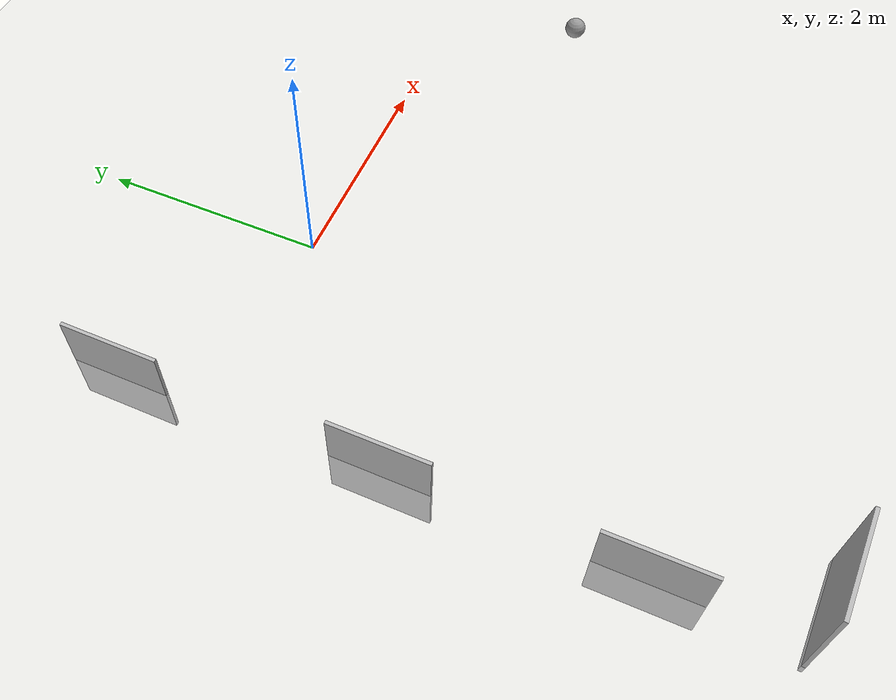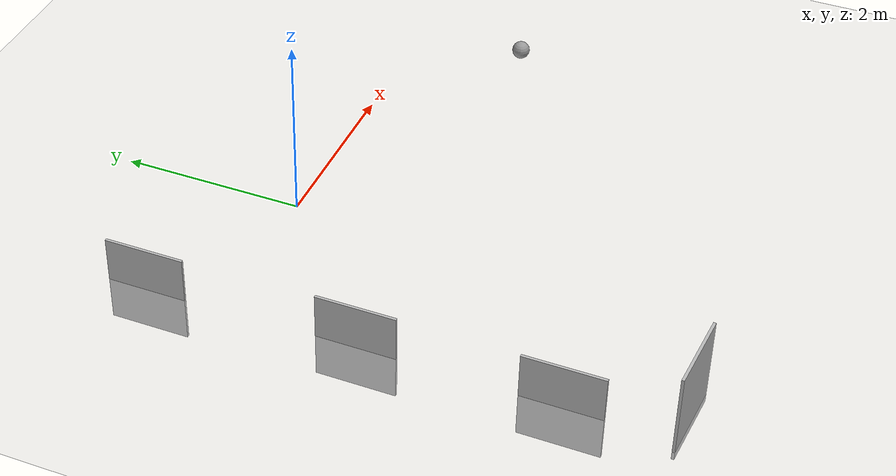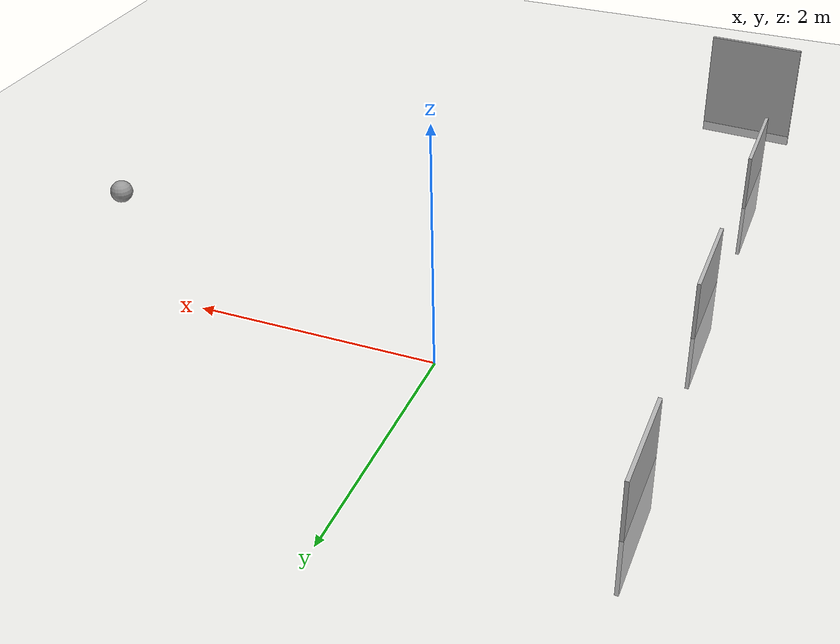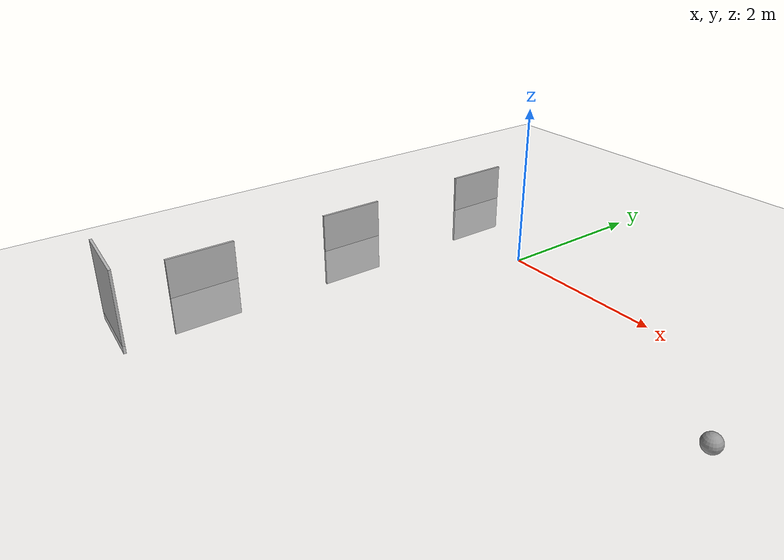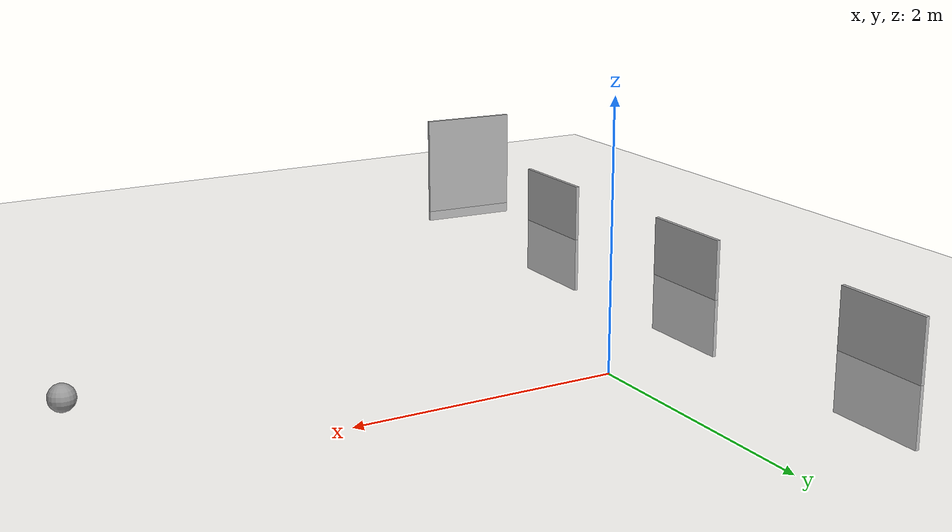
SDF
<sdf version="1.7">
 <world name="default">
  <model name="ground_plane">
   <static>1</static>
   <link name="link">
    <collision name="collision">
     <geometry><plane><normal>0 0 1</normal><size>100 100</size></plane></geometry>
     <surface>
      <contact><collide_bitmask>65535</collide_bitmask></contact>
      <friction><ode><mu>100</mu><mu2>50</mu2></ode></friction>
     </surface>
    </collision>
    <visual name="visual">
     <cast_shadows>0</cast_shadows>
     <geometry><plane><normal>0 0 1</normal><size>100 100</size></plane></geometry>
     <material>
      <script><uri>file://media/materials/scripts/gazebo.material</uri><name>Gazebo/Grey</name></script>
     </material>
    </visual>
   </link>
  </model>
  <gravity>0 0 -9.8</gravity>
  <magnetic_field>6e-06 2.3e-05 -4.2e-05</magnetic_field>
  <atmosphere type="adiabatic"/>
  <physics name="default_physics" default="0" type="ode">
   <max_step_size>0.001</max_step_size>
   <real_time_factor>1</real_time_factor>
   <real_time_update_rate>1000</real_time_update_rate>
  </physics>
  <scene><ambient>0.4 0.4 0.4 1</ambient><background>0.7 0.7 0.7 1</background><shadows>1</shadows></scene>
  <audio><device>default</device></audio>
  <spherical_coordinates>
   <surface_model>EARTH_WGS84</surface_model>
   <latitude_deg>0</latitude_deg>
   <longitude_deg>0</longitude_deg>
   <elevation>0</elevation>
   <heading_deg>0</heading_deg>
  </spherical_coordinates>
  <model name="my_ball">
   <link name="link_0">
    <inertial>
     <mass>1</mass>
     <inertia><ixx>0.1</ixx><ixy>0</ixy><ixz>0</ixz><iyy>0.1</iyy><iyz>0</iyz><izz>0.1</izz></inertia>
    </inertial>
    <visual name="visual">
     <geometry><sphere><radius>0.1</radius></sphere></geometry>
     <material>
      <lighting>1</lighting>
      <script><uri>file://media/materials/scripts/gazebo.material</uri><name>Gazebo/Grey</name></script>
      <shader type="vertex"><normal_map>__default__</normal_map></shader>
      <ambient>1 1 1 1</ambient>
      <diffuse>1 1 1 1</diffuse>
      <specular>1 1 1 1</specular>
      <emissive>1 1 1 1</emissive>
     </material>
    </visual>
    <collision name="collision">
     <geometry><sphere><radius>0.1</radius></sphere></geometry>
     <surface>
      <friction>
       <ode><mu>1</mu><mu2>1</mu2><fdir1>0 0 0</fdir1><slip1>0</slip1><slip2>0</slip2></ode>
       <torsional>
        <coefficient>1</coefficient>
        <patch_radius>0</patch_radius>
        <surface_radius>0</surface_radius>
        <use_patch_radius>1</use_patch_radius>
        <ode><slip>0</slip></ode>
       </torsional>
      </friction>
      <bounce><restitution_coefficient>0</restitution_coefficient><threshold>1e+06</threshold></bounce>
      <contact>
       <collide_without_contact>0</collide_without_contact>
       <collide_without_contact_bitmask>1</collide_without_contact_bitmask>
       <collide_bitmask>1</collide_bitmask>
       <ode>
        <soft_cfm>0</soft_cfm>
        <soft_erp>0.2</soft_erp>
        <kp>1e+13</kp>
        <kd>1</kd>
        <max_vel>0.01</max_vel>
        <min_depth>0</min_depth>
       </ode>
       <bullet>
        <split_impulse>1</split_impulse>
        <split_impulse_penetration_threshold>-0.01</split_impulse_penetration_threshold>
        <soft_cfm>0</soft_cfm>
        <soft_erp>0.2</soft_erp>
        <kp>1e+13</kp>
        <kd>1</kd>
       </bullet>
      </contact>
     </surface>
    </collision>
   </link>
   <static>0</static>
   <pose>3.55994 -1.22025 0.1 0.018695 -0 0</pose>
  </model>
  <model name="makerspet_poster">
   <link name="link">
    <visual name="visual">
     <geometry><box><size>0.03 0.85714 1</size></box></geometry>
     <material>
      <script>
       <uri>model://makerspet_poster/material/script</uri>
       <uri>model://makerspet_poster/material/textures</uri>
       <name>Custom/makerspet</name>
      </script>
     </material>
    </visual>
   </link>
   <static>1</static>
   <pose>-1.73697 -1.44025 0 0 -0 0</pose>
  </model>
  <model name="makerspet_poster_0">
   <link name="link">
    <visual name="visual">
     <geometry><box><size>0.03 0.85714 1</size></box></geometry>
     <material>
      <script>
       <uri>model://makerspet_poster/material/script</uri>
       <uri>model://makerspet_poster/material/textures</uri>
       <name>Custom/makerspet</name>
      </script>
     </material>
    </visual>
   </link>
   <static>1</static>
   <pose>-1.73838 -3.55111 0 0 -0 0</pose>
  </model>
  <model name="makerspet_poster_1">
   <link name="link">
    <visual name="visual">
     <geometry><box><size>0.03 0.85714 1</size></box></geometry>
     <material>
      <script>
       <uri>model://makerspet_poster/material/script</uri>
       <uri>model://makerspet_poster/material/textures</uri>
       <name>Custom/makerspet</name>
      </script>
     </material>
    </visual>
   </link>
   <static>1</static>
   <pose>-1.46573 -4.71719 0.402104 0 -0 1.50889</pose>
  </model>
  <model name="makerspet_poster_clone">
   <link name="link">
    <visual name="visual">
     <geometry><box><size>0.03 0.85714 1</size></box></geometry>
     <material>
      <script>
       <uri>model://makerspet_poster/material/script</uri>
       <uri>model://makerspet_poster/material/textures</uri>
       <name>Custom/makerspet</name>
      </script>
     </material>
    </visual>
   </link>
   <static>1</static>
   <pose>-1.78167 0.832603 0 0 -0 0</pose>
  </model>
  <light name="user_spot_light_0" type="spot">
   <pose>-0.0737 -0.156214 1 0 -0 0</pose>
   <diffuse>0.5 0.5 0.5 1</diffuse>
   <specular>0.1 0.1 0.1 1</specular>
   <direction>0 0 -1</direction>
   <attenuation>
    <range>20</range>
    <constant>0.5</constant>
    <linear>0.01</linear>
    <quadratic>0.001</quadratic>
   </attenuation>
   <cast_shadows>0</cast_shadows>
   <spot><inner_angle>0.6</inner_angle><outer_angle>1</outer_angle><falloff>1</falloff></spot>
  </light>
 </world>
</sdf>
